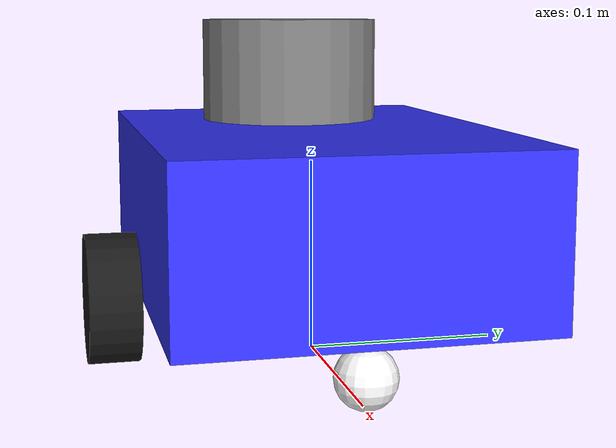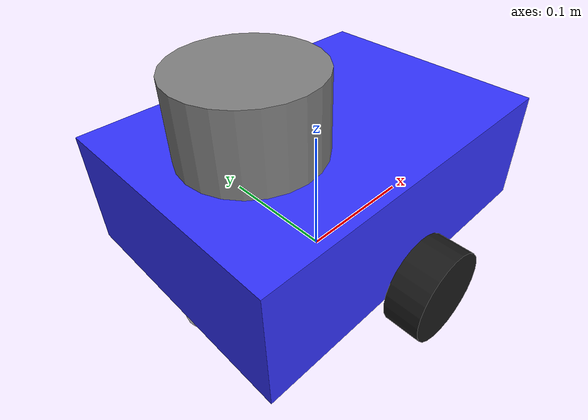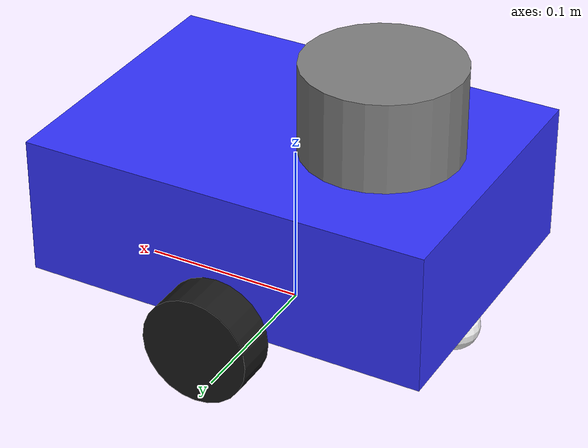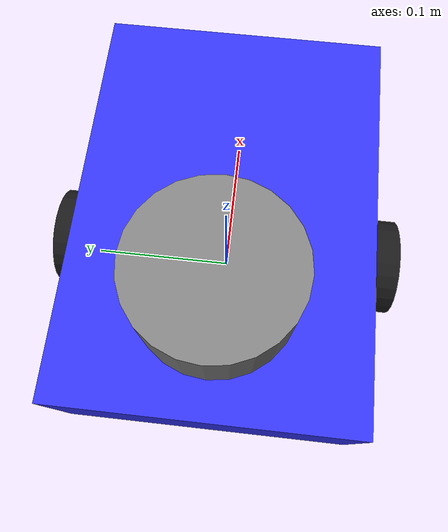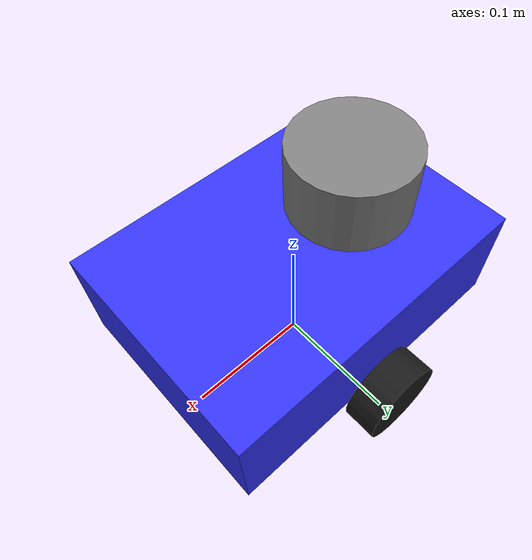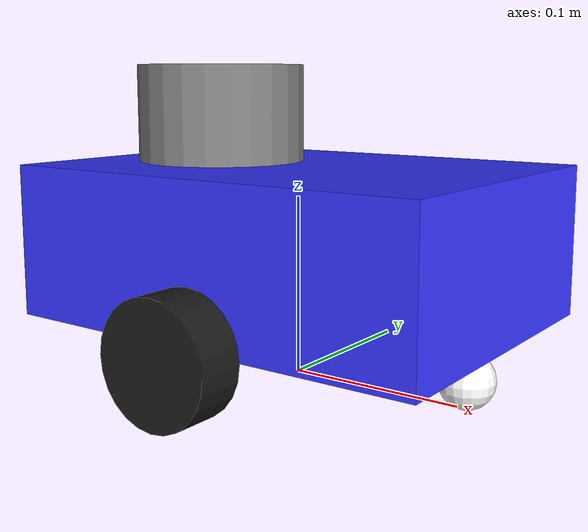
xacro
<?xml version="1.0"?>
<robot xmlns:xacro="http://www.ros.org/wiki/xacro">

    <xacro:include filename="inertial_macros.xacro" />

    <!-- ======================== MATERIALS ======================== -->

    <material name="white">
        <color rgba="1 1 1 1"/>
    </material>

    <material name="orange">
        <color rgba="0.87 0.53 0.13 1"/>
    </material>

    <material name="blue">
        <color rgba="0.2 0.2 1 1"/>
    </material>

    <material name="black">
        <color rgba="0.1 0.1 0.1 1"/>
    </material>

    <material name="red">
        <color rgba="1 0 0 1"/>
    </material>

    <material name="gray">
        <color rgba="0.5 0.5 0.5 1"/>
    </material>

    <!-- ======================== DIMENSIONS (xacro properties) ======================== -->

    <!-- Bánh xe chính -->
    <xacro:property name="wheel_radius"  value="0.033" />
    <xacro:property name="wheel_length"  value="0.026" />
    <xacro:property name="wheel_mass"    value="0.050" />
    <!-- Khoảng cách từ tâm robot đến tâm bánh xe theo trục Y (track width/2) -->
    <!-- chassis rộng 180mm (0.18m) → mép ngoài 90mm, trục motor nhô ra ~15mm → tổng 0.105m -->
    <xacro:property name="wheel_y_offset" value="0.105" />

    <!-- Chassis (Thân robot chính hình hộp chữ nhật bo góc như hình mẫu: 250x180x85mm) -->
    <xacro:property name="mica_rect_x"       value="0.250" /> <!-- Chiều dài: 25cm -->
    <xacro:property name="mica_rect_y"       value="0.180" /> <!-- Chiều rộng: 18cm -->
    <xacro:property name="chassis_height"    value="0.085" /> <!-- Chiều cao: 8.5cm -->
    <xacro:property name="chassis_mass"      value="0.800" /> <!-- Khối lượng thân xe -->

    <!-- Bánh phụ con lăn (caster wheels) trước và sau -->
    <xacro:property name="caster_radius" value="0.015" />
    <xacro:property name="caster_mass"   value="0.030" />

    <!-- Vị trí trục bánh chủ động: nằm chính giữa chassis
         → 25cm / 2 = 12.5cm từ đuôi chassis
         → chassis_joint x = -0.125 (chassis link origin tại đuôi chassis) -->
    <xacro:property name="axle_from_rear" value="0.125" />

    <!-- RPLidar -->
    <xacro:property name="lidar_radius"  value="0.048" />
    <xacro:property name="lidar_height"  value="0.055" />
    <xacro:property name="lidar_mass"    value="0.170" />

    <!-- ======================== BASE FOOTPRINT ======================== -->
    <!--
        base_footprint: điểm ảo nằm trên mặt đất, hình chiếu của robot.
        Dùng làm gốc cho Nav2.
    -->
    <link name="base_footprint"/>

    <joint name="base_footprint_joint" type="fixed">
        <parent link="base_footprint"/>
        <child link="base_link"/>
        <!-- Nâng base_link lên bằng bán kính bánh xe so với mặt đất -->
        <origin xyz="0 0 ${wheel_radius}" rpy="0 0 0"/>
    </joint>

    <!-- ======================== BASE LINK ======================== -->
    <!--
        base_link: tâm trục bánh chủ động.
        Link rỗng (không có visual/collision) — dùng làm điểm gốc tham chiếu.
    -->
    <link name="base_link"/>

    <!-- ======================== CHASSIS ======================== -->
    <joint name="chassis_joint" type="fixed">
        <parent link="base_link"/>
        <child link="chassis"/>
        <!--
            x = -axle_from_rear: dịch về phía sau để trục bánh nằm ở chính giữa thân xe
            z = 0: đáy chassis ngang bằng tâm trục bánh (motor shaft ở tâm bánh)
        -->
        <origin xyz="${-axle_from_rear} 0 0" rpy="0 0 0"/>
    </joint>

    <link name="chassis">
        <visual>
            <origin xyz="${mica_rect_x/2} 0 ${chassis_height/2}" rpy="0 0 0"/>
            <geometry>
                <box size="${mica_rect_x} ${mica_rect_y} ${chassis_height}"/>
            </geometry>
            <material name="blue"/>
        </visual>
        <collision>
            <origin xyz="${mica_rect_x/2} 0 ${chassis_height/2}" rpy="0 0 0"/>
            <geometry>
                <box size="${mica_rect_x} ${mica_rect_y} ${chassis_height}"/>
            </geometry>
        </collision>
        <xacro:inertial_box mass="${chassis_mass}"
                            x="${mica_rect_x}" y="${mica_rect_y}" z="${chassis_height}">
            <origin xyz="${mica_rect_x/2} 0 ${chassis_height/2}" rpy="0 0 0"/>
        </xacro:inertial_box>
    </link>

    <!-- ======================== LEFT WHEEL ======================== -->
    <!--
        Bánh chủ động bên trái.
        Joint dạng continuous (xoay liên tục), trục quay = Z (sau khi rpy xoay -90°).
    -->
    <joint name="left_wheel_joint" type="continuous">
        <parent link="base_link"/>
        <child link="left_wheel"/>
        <origin xyz="0 ${wheel_y_offset} 0" rpy="${-pi/2} 0 0"/>
        <axis xyz="0 0 1"/>
        <limit effort="1.0" velocity="10.0"/>
    </joint>

    <link name="left_wheel">
        <visual>
            <geometry>
                <cylinder length="${wheel_length}" radius="${wheel_radius}"/>
            </geometry>
            <material name="black"/>
        </visual>
        <collision>
            <geometry>
                <cylinder length="${wheel_length}" radius="${wheel_radius}"/>
            </geometry>
        </collision>
        <xacro:inertial_cylinder mass="${wheel_mass}"
                                 length="${wheel_length}"
                                 radius="${wheel_radius}">
            <origin xyz="0 0 0" rpy="0 0 0"/>
        </xacro:inertial_cylinder>
    </link>

    <!-- ======================== RIGHT WHEEL ======================== -->
    <!--
        Bánh chủ động bên phải.
        rpy = (+pi/2, 0, 0): xoay ngược chiều để axis z quay đúng hướng tiến.
    -->
    <joint name="right_wheel_joint" type="continuous">
        <parent link="base_link"/>
        <child link="right_wheel"/>
        <origin xyz="0 ${-wheel_y_offset} 0" rpy="${pi/2} 0 0"/>
        <axis xyz="0 0 -1"/>
        <limit effort="1.0" velocity="10.0"/>
    </joint>

    <link name="right_wheel">
        <visual>
            <geometry>
                <cylinder length="${wheel_length}" radius="${wheel_radius}"/>
            </geometry>
            <material name="black"/>
        </visual>
        <collision>
            <geometry>
                <cylinder length="${wheel_length}" radius="${wheel_radius}"/>
            </geometry>
        </collision>
        <xacro:inertial_cylinder mass="${wheel_mass}"
                                 length="${wheel_length}"
                                 radius="${wheel_radius}">
            <origin xyz="0 0 0" rpy="0 0 0"/>
        </xacro:inertial_cylinder>
    </link>

    <!-- ======================== CASTER WHEELS (FRONT & REAR) ======================== -->

    <!-- ── Bánh phụ trước ── -->
    <joint name="front_caster_wheel_joint" type="fixed">
        <parent link="chassis"/>
        <child link="front_caster_wheel"/>
        <origin xyz="${mica_rect_x - 0.020} 0 ${-(wheel_radius - caster_radius)}"
                rpy="0 0 0"/>
    </joint>

    <link name="front_caster_wheel">
        <visual>
            <geometry>
                <sphere radius="${caster_radius}"/>
            </geometry>
            <material name="white"/>
        </visual>
        <collision>
            <geometry>
                <sphere radius="${caster_radius}"/>
            </geometry>
        </collision>
        <xacro:inertial_sphere mass="${caster_mass}" radius="${caster_radius}">
            <origin xyz="0 0 0" rpy="0 0 0"/>
        </xacro:inertial_sphere>
    </link>

    <gazebo reference="front_caster_wheel">
        <mu1 value="0.0"/>
        <mu2 value="0.0"/>
        <material>Gazebo/White</material>
    </gazebo>

    <!-- ── Bánh phụ sau ── -->
    <joint name="rear_caster_wheel_joint" type="fixed">
        <parent link="chassis"/>
        <child link="rear_caster_wheel"/>
        <origin xyz="0.020 0 ${-(wheel_radius - caster_radius)}"
                rpy="0 0 0"/>
    </joint>

    <link name="rear_caster_wheel">
        <visual>
            <geometry>
                <sphere radius="${caster_radius}"/>
            </geometry>
            <material name="white"/>
        </visual>
        <collision>
            <geometry>
                <sphere radius="${caster_radius}"/>
            </geometry>
        </collision>
        <xacro:inertial_sphere mass="${caster_mass}" radius="${caster_radius}">
            <origin xyz="0 0 0" rpy="0 0 0"/>
        </xacro:inertial_sphere>
    </link>

    <gazebo reference="rear_caster_wheel">
        <mu1 value="0.0"/>
        <mu2 value="0.0"/>
        <material>Gazebo/White</material>
    </gazebo>

    <!-- ======================== LASER FRAME (RPLidar) ======================== -->
    <joint name="laser_joint" type="fixed">
        <parent link="chassis"/>
        <child link="laser_frame"/>
        <origin xyz="0.070 0 ${chassis_height + lidar_height/2}" rpy="0 0 3.14159"/>
    </joint>

    <link name="laser_frame">
        <visual>
            <geometry>
                <cylinder radius="${lidar_radius}" length="${lidar_height}"/>
            </geometry>
            <material name="gray"/>
        </visual>
        <collision>
            <geometry>
                <cylinder radius="${lidar_radius}" length="${lidar_height}"/>
            </geometry>
        </collision>
        <xacro:inertial_cylinder mass="${lidar_mass}"
                                 length="${lidar_height}"
                                 radius="${lidar_radius}">
            <origin xyz="0 0 0" rpy="0 0 0"/>
        </xacro:inertial_cylinder>
    </link>

    <!-- Gazebo sensor plugin cho LiDAR (gpu_lidar 360°) -->
    <gazebo reference="laser_frame">
        <material>Gazebo/DarkGrey</material>
        <sensor name="laser" type="gpu_lidar">
            <always_on>1</always_on>
            <pose>0 0 0 0 0 0</pose>
            <visualize>true</visualize>
            <update_rate>10</update_rate>
            <lidar>
                <scan>
                    <horizontal>
                        <samples>360</samples>
                        <min_angle>-3.14159</min_angle>
                        <max_angle>3.14159</max_angle>
                    </horizontal>
                </scan>
                <range>
                    <min>0.15</min>
                    <max>12.0</max>
                </range>
            </lidar>
            <topic>scan</topic>
            <gz_frame_id>laser_frame</gz_frame_id>
        </sensor>
    </gazebo>

</robot>
